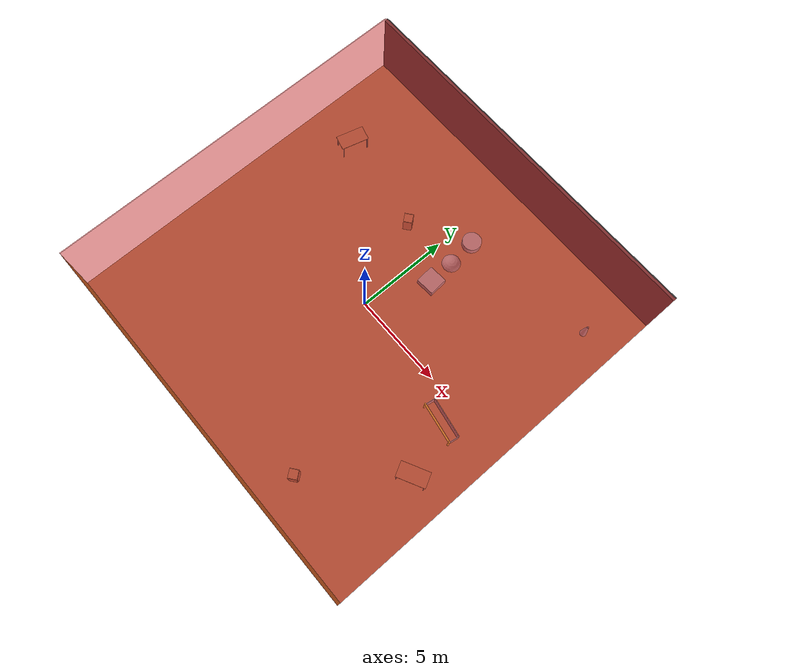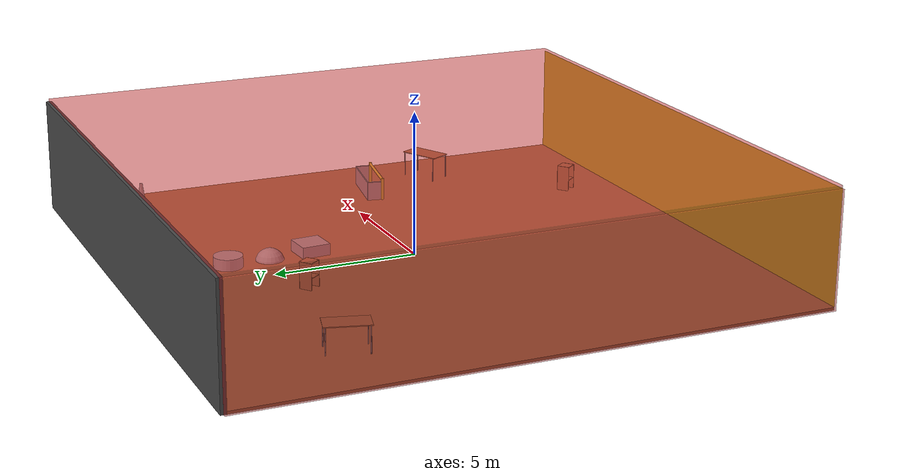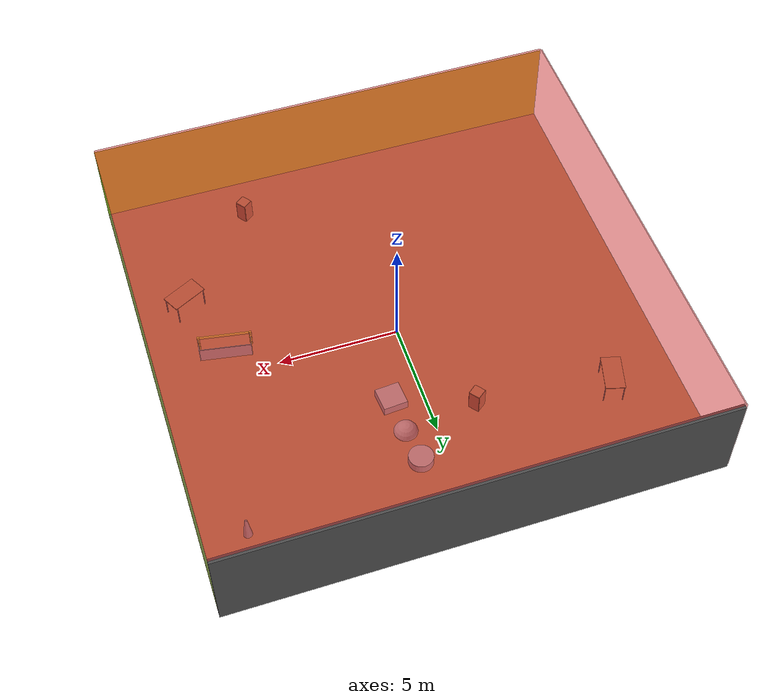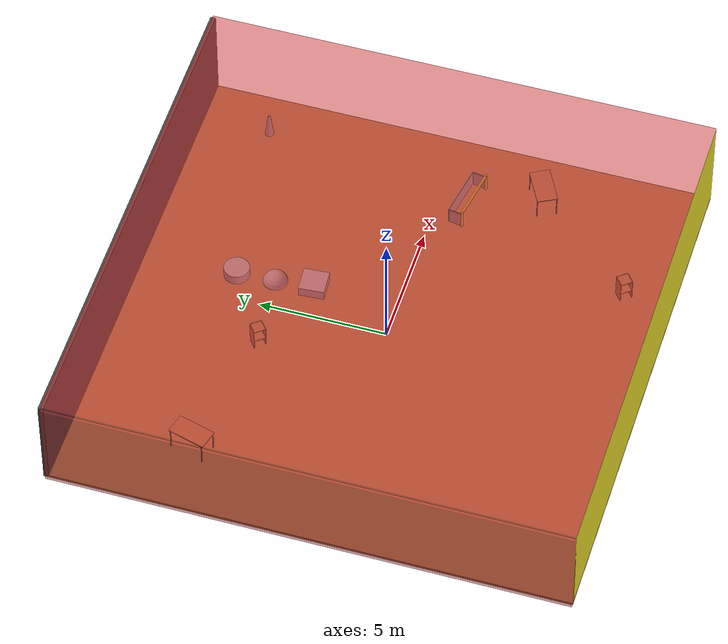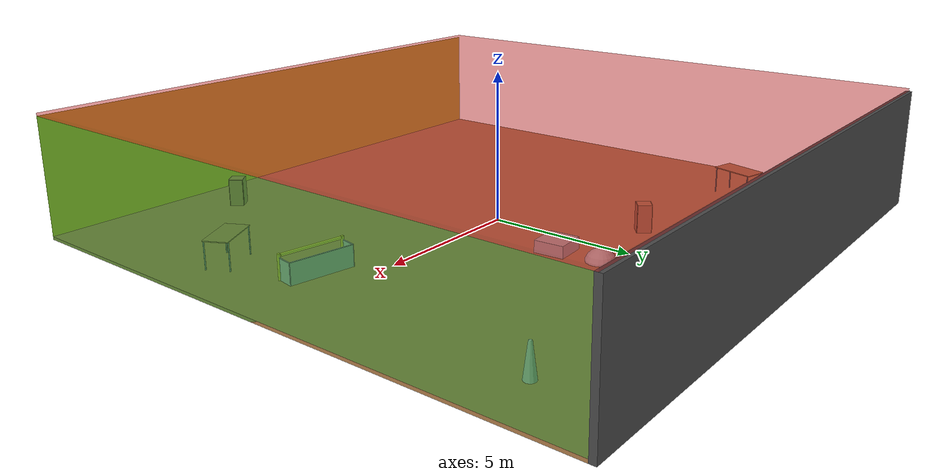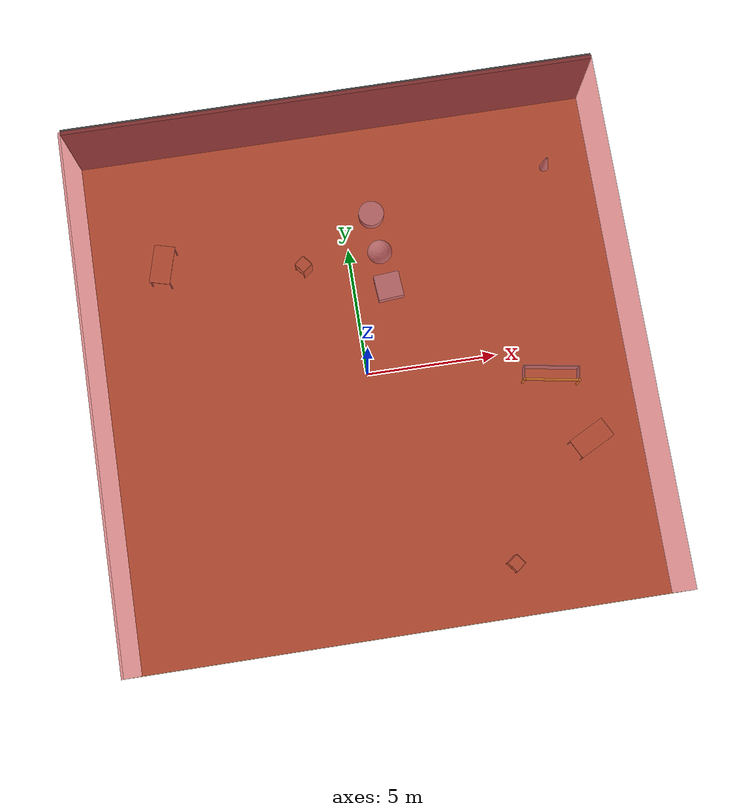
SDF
<sdf version="1.4">
 <world name="default">
  <physics type="ode">
   <max_step_size>0.001</max_step_size>
   <real_time_factor>1</real_time_factor>
   <real_time_update_rate>1000</real_time_update_rate>
   <gravity>0 0 -9.8</gravity>
  </physics>
  <scene><ambient>0.4 0.4 0.4 1</ambient><background>0.7 0.7 0.7 1</background><shadows>1</shadows></scene>
  <model name="Surrounding">
   <static>1</static>
   <link name="Ceiling">
    <collision name="Ceiling_Collision"><geometry><box><size>20 20 0.1</size></box></geometry></collision>
    <visual name="Ceiling_Visual">
     <geometry><box><size>20 20 0.1</size></box></geometry>
     <material>
      <script><uri>file://media/materials/scripts/gazebo.material</uri><name>Gazebo/RedTransparent</name></script>
     </material>
    </visual>
    <pose>0 0 4.05 0 0 0</pose>
   </link>
   <link name="Wall_South">
    <collision name="Wall_South_Collision">
     <geometry><box><size>20 0 4</size></box></geometry>
     <pose>0 0 2 0 -0 0</pose>
    </collision>
    <visual name="Wall_South_Visual">
     <pose>0 0 2 0 -0 0</pose>
     <geometry><box><size>20 0 4</size></box></geometry>
     <material>
      <script><uri>file://media/materials/scripts/gazebo.material</uri><name>Gazebo/Yellow</name></script>
     </material>
    </visual>
    <velocity_decay><linear>0</linear><angular>0</angular></velocity_decay>
    <pose>0 -10 0 0 -0 0</pose>
   </link>
   <link name="Wall_East">
    <collision name="Wall_21_Collision">
     <geometry><box><size>20 0 4</size></box></geometry>
     <pose>0 0 2 0 -0 0</pose>
    </collision>
    <visual name="Wall_21_Visual">
     <pose>0 0 2 0 -0 0</pose>
     <geometry><box><size>20 0 4</size></box></geometry>
     <material>
      <script><uri>file://media/materials/scripts/gazebo.material</uri><name>Gazebo/GreenTransparent</name></script>
     </material>
    </visual>
    <velocity_decay><linear>0</linear><angular>0</angular></velocity_decay>
    <pose>10 0 0 0 -0 1.5708</pose>
   </link>
   <link name="Wall_North">
    <collision name="Wall_22_Collision">
     <geometry><box><size>20 0.2 4</size></box></geometry>
     <pose>0 0 2 0 -0 0</pose>
    </collision>
    <visual name="Wall_22_Visual">
     <pose>0 0 2 0 -0 0</pose>
     <geometry><box><size>20 0.2 4</size></box></geometry>
     <material>
      <script><uri>file://media/materials/scripts/gazebo.material</uri><name>Gazebo/DarkGrey</name></script>
     </material>
    </visual>
    <velocity_decay><linear>0</linear><angular>0</angular></velocity_decay>
    <pose>0 10 0 0 -0 0</pose>
   </link>
   <link name="Wall_West">
    <collision name="Wall_23_Collision">
     <geometry><box><size>20 0.2 4</size></box></geometry>
     <pose>0 0 2 0 -0 0</pose>
    </collision>
    <visual name="Wall_23_Visual">
     <pose>0 0 2 0 -0 0</pose>
     <geometry><box><size>20 0.2 4</size></box></geometry>
     <material>
      <script><uri>file://media/materials/scripts/gazebo.material</uri><name>Gazebo/RedTransparent</name></script>
     </material>
    </visual>
    <velocity_decay><linear>0</linear><angular>0</angular></velocity_decay>
    <pose>-10 0 0 0 0 -1.5708</pose>
   </link>
   <link name="Ground_link">
    <collision name="collision">
     <pose>0 0 .05 0 -0 0</pose>
     <geometry><box><size>20 20 0.1</size></box></geometry>
    </collision>
    <visual name="visual">
     <pose>0 0 .05 0 -0 0</pose>
     <geometry><box><size>20 20 0.1</size></box></geometry>
     <material>
      <script><uri>file://media/materials/scripts/gazebo.material</uri><name>Gazebo/WoodPallet</name></script>
     </material>
    </visual>
   </link>
   <static>1</static>
  </model>
  <spherical_coordinates>
   <surface_model>EARTH_WGS84</surface_model>
   <latitude_deg>0</latitude_deg>
   <longitude_deg>0</longitude_deg>
   <elevation>0</elevation>
   <heading_deg>0</heading_deg>
  </spherical_coordinates>
  <light name="lightball_0" type="diffuse">
   <diffuse>0.8 0.8 0.8 1</diffuse>
   <specular>0.2 0.2 0.2 1</specular>
   <attenuation>
    <range>100</range>
    <constant>0.7</constant>
    <linear>0.01</linear>
    <quadratic>0.001</quadratic>
   </attenuation>
   <direction>-0.5 0.1 -0.9</direction>
   <pose>2.28150175194 9.55756311721 0.852149676697 0 0 0</pose>
  </light>
  <light name="lightball_1" type="diffuse">
   <diffuse>0.8 0.8 0.8 1</diffuse>
   <specular>0.2 0.2 0.2 1</specular>
   <attenuation>
    <range>100</range>
    <constant>0.7</constant>
    <linear>0.01</linear>
    <quadratic>0.001</quadratic>
   </attenuation>
   <direction>-0.5 0.1 -0.9</direction>
   <pose>-9.36313927701 -3.72787352846 1.84559962161 0 0 0</pose>
  </light>
  <light name="lightball_2" type="diffuse">
   <diffuse>0.8 0.8 0.8 1</diffuse>
   <specular>0.2 0.2 0.2 1</specular>
   <attenuation>
    <range>100</range>
    <constant>0.7</constant>
    <linear>0.01</linear>
    <quadratic>0.001</quadratic>
   </attenuation>
   <direction>-0.5 0.1 -0.9</direction>
   <pose>-1.57408428802 -4.52460093934 2.60811227034 0 0 0</pose>
  </light>
  <light name="lightball_3" type="diffuse">
   <diffuse>0.8 0.8 0.8 1</diffuse>
   <specular>0.2 0.2 0.2 1</specular>
   <attenuation>
    <range>100</range>
    <constant>0.7</constant>
    <linear>0.01</linear>
    <quadratic>0.001</quadratic>
   </attenuation>
   <direction>-0.5 0.1 -0.9</direction>
   <pose>1.44917313454 -5.76671902892 1.51798036136 0 0 0</pose>
  </light>
  <light name="lightball_4" type="diffuse">
   <diffuse>0.8 0.8 0.8 1</diffuse>
   <specular>0.2 0.2 0.2 1</specular>
   <attenuation>
    <range>100</range>
    <constant>0.7</constant>
    <linear>0.01</linear>
    <quadratic>0.001</quadratic>
   </attenuation>
   <direction>-0.5 0.1 -0.9</direction>
   <pose>-0.332113454841 -3.15452342833 3.85690776858 0 0 0</pose>
  </light>
  <light name="lightball_5" type="diffuse">
   <diffuse>0.8 0.8 0.8 1</diffuse>
   <specular>0.2 0.2 0.2 1</specular>
   <attenuation>
    <range>100</range>
    <constant>0.7</constant>
    <linear>0.01</linear>
    <quadratic>0.001</quadratic>
   </attenuation>
   <direction>-0.5 0.1 -0.9</direction>
   <pose>1.65646072784 7.57909258295 2.46154423493 0 0 0</pose>
  </light>
  <light name="lightball_6" type="diffuse">
   <diffuse>0.8 0.8 0.8 1</diffuse>
   <specular>0.2 0.2 0.2 1</specular>
   <attenuation>
    <range>100</range>
    <constant>0.7</constant>
    <linear>0.01</linear>
    <quadratic>0.001</quadratic>
   </attenuation>
   <direction>-0.5 0.1 -0.9</direction>
   <pose>8.94387374306 -8.33358588562 2.16610600418 0 0 0</pose>
  </light>
  <light name="lightball_7" type="diffuse">
   <diffuse>0.8 0.8 0.8 1</diffuse>
   <specular>0.2 0.2 0.2 1</specular>
   <attenuation>
    <range>100</range>
    <constant>0.7</constant>
    <linear>0.01</linear>
    <quadratic>0.001</quadratic>
   </attenuation>
   <direction>-0.5 0.1 -0.9</direction>
   <pose>-1.67292381909 -7.49818336301 2.24788176082 0 0 0</pose>
  </light>
  <light name="lightball_8" type="diffuse">
   <diffuse>0.8 0.8 0.8 1</diffuse>
   <specular>0.2 0.2 0.2 1</specular>
   <attenuation>
    <range>100</range>
    <constant>0.7</constant>
    <linear>0.01</linear>
    <quadratic>0.001</quadratic>
   </attenuation>
   <direction>-0.5 0.1 -0.9</direction>
   <pose>-1.84916606932 8.88618074293 2.20541606002 0 0 0</pose>
  </light>
  <light name="lightball_9" type="diffuse">
   <diffuse>0.8 0.8 0.8 1</diffuse>
   <specular>0.2 0.2 0.2 1</specular>
   <attenuation>
    <range>100</range>
    <constant>0.7</constant>
    <linear>0.01</linear>
    <quadratic>0.001</quadratic>
   </attenuation>
   <direction>-0.5 0.1 -0.9</direction>
   <pose>3.86137476231 -2.14122410192 2.16263820628 0 0 0</pose>
  </light>
  <light name="lightball_10" type="diffuse">
   <diffuse>0.8 0.8 0.8 1</diffuse>
   <specular>0.2 0.2 0.2 1</specular>
   <attenuation>
    <range>100</range>
    <constant>0.7</constant>
    <linear>0.01</linear>
    <quadratic>0.001</quadratic>
   </attenuation>
   <direction>-0.5 0.1 -0.9</direction>
   <pose>5.95138345464 -6.23587597009 1.81053814198 0 0 0</pose>
  </light>
  <light name="lightball_11" type="diffuse">
   <diffuse>0.8 0.8 0.8 1</diffuse>
   <specular>0.2 0.2 0.2 1</specular>
   <attenuation>
    <range>100</range>
    <constant>0.7</constant>
    <linear>0.01</linear>
    <quadratic>0.001</quadratic>
   </attenuation>
   <direction>-0.5 0.1 -0.9</direction>
   <pose>-5.91357078902 -6.15614754808 2.35012370611 0 0 0</pose>
  </light>
  <light name="lightball_12" type="diffuse">
   <diffuse>0.8 0.8 0.8 1</diffuse>
   <specular>0.2 0.2 0.2 1</specular>
   <attenuation>
    <range>100</range>
    <constant>0.7</constant>
    <linear>0.01</linear>
    <quadratic>0.001</quadratic>
   </attenuation>
   <direction>-0.5 0.1 -0.9</direction>
   <pose>-7.33075683093 8.14899356221 1.26936965968 0 0 0</pose>
  </light>
  <light name="lightball_13" type="diffuse">
   <diffuse>0.8 0.8 0.8 1</diffuse>
   <specular>0.2 0.2 0.2 1</specular>
   <attenuation>
    <range>100</range>
    <constant>0.7</constant>
    <linear>0.01</linear>
    <quadratic>0.001</quadratic>
   </attenuation>
   <direction>-0.5 0.1 -0.9</direction>
   <pose>3.90539649714 5.26581760964 3.17951528977 0 0 0</pose>
  </light>
  <include><uri>model://table</uri><pose>-7.21957101493 5.28766471248 0 0 0 1.30465419456</pose></include>
  <include><uri>model://cabinet</uri><pose>-1.82688016753 4.46412002157 0 0 0 0.663580295298</pose></include>
  <include>
   <uri>model://textured_shapes</uri>
   <pose>1.21083050985 4.75876724826 0 0 0 0.076113117696</pose>
  </include>
  <include><uri>model://cabinet</uri><pose>4.33999742015 -8.05244349641 0 0 0 0.664320369541</pose></include>
  <include><uri>model://table</uri><pose>7.9401277842 -3.88111991502 0 0 0 0.479265849856</pose></include>
  <include>
   <uri>model://robocup_3Dsim_goal</uri>
   <pose>6.88252958531 -1.42561456787 0 0 0 1.39975229301</pose>
  </include>
  <include>
   <uri>model://construction_cone</uri>
   <pose>8.20358701937 7.22367531131 0 0 0 0.586087809705</pose>
  </include>
 </world>
</sdf>

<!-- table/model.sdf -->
<sdf version="1.5">
  <model name="table">
    <static>true</static>
    <link name="link">
      <collision name="surface">
        <pose>0 0 1.0 0 0 0</pose>
        <geometry>
          <box>
            <size>1.5 0.8 0.03</size>
          </box>
        </geometry>
        <surface>
          <friction>
            <ode>
              <mu>0.6</mu>
              <mu2>0.6</mu2>
            </ode>
          </friction>
        </surface>
      </collision>
      <visual name="visual1">
        <pose>0 0 1.0 0 0 0</pose>
        <geometry>
          <box>
            <size>1.5 0.8 0.03</size>
          </box>
        </geometry>
        <material>
          <script>
            <uri>model://media/materials/scripts/gazebo.material</uri>
            <name>Gazebo/Wood</name>
          </script>
        </material>
      </visual>
      <collision name="front_left_leg">
        <pose>0.68 0.38 0.5 0 0 0</pose>
        <geometry>
          <cylinder>
            <radius>0.02</radius>
            <length>1.0</length>
          </cylinder>
        </geometry>
      </collision>
      <visual name="front_left_leg">
        <pose>0.68 0.38 0.5 0 0 0</pose>
        <geometry>
          <cylinder>
            <radius>0.02</radius>
            <length>1.0</length>
          </cylinder>
        </geometry>
        <material>
          <script>
            <uri>model://media/materials/scripts/gazebo.material</uri>
            <name>Gazebo/Grey</name>
          </script>
        </material>
      </visual>
      <collision name="front_right_leg">
        <pose>0.68 -0.38 0.5 0 0 0</pose>
        <geometry>
          <cylinder>
            <radius>0.02</radius>
            <length>1.0</length>
          </cylinder>
        </geometry>
      </collision>
      <visual name="front_right_leg">
        <pose>0.68 -0.38 0.5 0 0 0</pose>
        <geometry>
          <cylinder>
            <radius>0.02</radius>
            <length>1.0</length>
          </cylinder>
        </geometry>
        <material>
          <script>
            <uri>model://media/materials/scripts/gazebo.material</uri>
            <name>Gazebo/Grey</name>
          </script>
        </material>
      </visual>
      <collision name="back_right_leg">
        <pose>-0.68 -0.38 0.5 0 0 0</pose>
        <geometry>
          <cylinder>
            <radius>0.02</radius>
            <length>1.0</length>
          </cylinder>
        </geometry>
      </collision>
      <visual name="back_right_leg">
        <pose>-0.68 -0.38 0.5 0 0 0</pose>
        <geometry>
          <cylinder>
            <radius>0.02</radius>
            <length>1.0</length>
          </cylinder>
        </geometry>
        <material>
          <script>
            <uri>model://media/materials/scripts/gazebo.material</uri>
            <name>Gazebo/Grey</name>
          </script>
        </material>
      </visual>
      <collision name="back_left_leg">
        <pose>-0.68 0.38 0.5 0 0 0</pose>
        <geometry>
          <cylinder>
            <radius>0.02</radius>
            <length>1.0</length>
          </cylinder>
        </geometry>
      </collision>
      <visual name="back_left_leg">
        <pose>-0.68 0.38 0.5 0 0 0</pose>
        <geometry>
          <cylinder>
            <radius>0.02</radius>
            <length>1.0</length>
          </cylinder>
        </geometry>
        <material>
          <script>
            <uri>model://media/materials/scripts/gazebo.material</uri>
            <name>Gazebo/Grey</name>
          </script>
        </material>
      </visual>
    </link>
  </model>
</sdf>

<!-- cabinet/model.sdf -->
<sdf version="1.5">
  <model name="cabinet">
    <static>true</static>
    <link name="cabinet_bottom_plate">
      <inertial>
        <pose>0 0 -1 0 0 0</pose>
        <inertia>
          <ixx>2.050000</ixx>
          <ixy>0</ixy>
          <ixz>0</ixz>
          <iyy>2.050000</iyy>
          <iyz>0</iyz>
          <izz>2.050000</izz>
        </inertia>
        <mass>25.000000</mass>
      </inertial>
      <collision name="cabinet_bottom_plate_geom">
        <pose>0 0 0.010000 0 0 0</pose>
        <geometry>
          <box>
            <size>0.450000 0.450000 0.020000</size>
          </box>
        </geometry>
      </collision>
      <visual name="cabinet_bottom_plate_geom_visual">
        <pose>0 0 0.010000 0 0 0</pose>
        <geometry>
          <box>
            <size>0.450000 0.450000 0.020000</size>
          </box>
        </geometry>
        <material>
          <script>
            <uri>model://media/materials/scripts/gazebo.material</uri>
            <name>Gazebo/Wood</name>
          </script>
        </material>
      </visual>
      <collision name="cabinet_bottom_plate_geom_cabinet_back_plate">
        <pose>0.235000 0 0.510000 0 0 0</pose>
        <geometry>
          <box>
            <size>0.020000 0.450000 1.020000</size>
          </box>
        </geometry>
      </collision>
      <visual name="cabinet_bottom_plate_geom_cabinet_back_plate_visual">
        <pose>0.235000 0 0.510000 0 0 0</pose>
        <geometry>
          <box>
            <size>0.020000 0.450000 1.020000</size>
          </box>
        </geometry>
        <material>
          <script>
            <uri>model://media/materials/scripts/gazebo.material</uri>
            <name>Gazebo/Wood</name>
          </script>
        </material>
      </visual>
      <collision name="cabinet_bottom_plate_geom_cabinet_left_plate">
        <pose>0 0.235000 0.510000 0 0 0</pose>
        <geometry>
          <box>
            <size>0.450000 0.020000 1.020000</size>
          </box>
        </geometry>
      </collision>
      <visual name="cabinet_bottom_plate_geom_cabinet_left_plate_visual">
        <pose>0 0.235000 0.510000 0 0 0</pose>
        <geometry>
          <box>
            <size>0.450000 0.020000 1.020000</size>
          </box>
        </geometry>
        <material>
          <script>
            <uri>model://media/materials/scripts/gazebo.material</uri>
            <name>Gazebo/Wood</name>
          </script>
        </material>
      </visual>
      <collision name="cabinet_bottom_plate_geom_cabinet_middle_plate">
        <pose>0 0 0.510000 0 0 0</pose>
        <geometry>
          <box>
            <size>0.450000 0.450000 0.020000</size>
          </box>
        </geometry>
      </collision>
      <visual name="cabinet_bottom_plate_geom_cabinet_middle_plate_visual">
        <pose>0 0 0.510000 0 0 0</pose>
        <geometry>
          <box>
            <size>0.450000 0.450000 0.020000</size>
          </box>
        </geometry>
        <material>
          <script>
            <uri>model://media/materials/scripts/gazebo.material</uri>
            <name>Gazebo/Wood</name>
          </script>
        </material>
      </visual>
      <collision name="cabinet_bottom_plate_geom_cabinet_right_plate">
        <pose>0 -0.235000 0.510000 0 0 0</pose>
        <geometry>
          <box>
            <size>0.450000 0.020000 1.020000</size>
          </box>
        </geometry>
      </collision>
      <visual name="cabinet_bottom_plate_geom_cabinet_right_plate_visual">
        <pose>0 -0.235000 0.510000 0 0 0</pose>
        <geometry>
          <box>
            <size>0.450000 0.020000 1.020000</size>
          </box>
        </geometry>
        <material>
          <script>
            <uri>model://media/materials/scripts/gazebo.material</uri>
            <name>Gazebo/Wood</name>
          </script>
        </material>
      </visual>
      <collision name="cabinet_bottom_plate_geom_cabinet_top_plate">
        <pose>0 0 1.010000 0 0 0</pose>
        <geometry>
          <box>
            <size>0.450000 0.450000 0.020000</size>
          </box>
        </geometry>
      </collision>
      <visual name="cabinet_bottom_plate_geom_cabinet_top_plate_visual">
        <pose>0 0 1.010000 0 0 0</pose>
        <geometry>
          <box>
            <size>0.450000 0.450000 0.020000</size>
          </box>
        </geometry>
        <material>
          <script>
            <uri>model://media/materials/scripts/gazebo.material</uri>
            <name>Gazebo/Wood</name>
          </script>
        </material>
      </visual>
    </link>
  </model>
</sdf>

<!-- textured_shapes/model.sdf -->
<sdf version="1.6">
  <model name="textured_shapes">
    <pose>0 0 0.5 0 0 0</pose>
    <link name="box">
      <pose>0 -1.5 0 0 0 0</pose>
      <collision name="collision">
        <geometry>
          <box>
            <size>1 1 1</size>
          </box>
        </geometry>
      </collision>
      <visual name="visual">
        <geometry>
          <box>
            <size>1 1 1</size>
          </box>
        </geometry>
        <material>
          <script>
            <uri>model://../model_source/models/textured_shapes/materials/scripts</uri>
            <uri>model://../model_source/models/textured_shapes/materials/textures</uri>
            <name>TexturedShape/Squares</name>
          </script>
        </material>
      </visual>
    </link>
    <link name="sphere">
      <collision name="collision">
        <geometry>
          <sphere>
            <radius>0.5</radius>
          </sphere>
        </geometry>
      </collision>
      <visual name="visual">
        <geometry>
          <sphere>
            <radius>0.5</radius>
          </sphere>
        </geometry>
        <material>
          <script>
            <uri>model://../model_source/models/textured_shapes/materials/scripts</uri>
            <uri>model://../model_source/models/textured_shapes/materials/textures</uri>
            <name>TexturedShape/Squares</name>
          </script>
        </material>
      </visual>
    </link>
    <link name="cylinder">
      <pose>0 1.5 0 0 0 0</pose>
      <collision name="collision">
        <geometry>
          <cylinder>
            <radius>0.5</radius>
            <length>1</length>
          </cylinder>
        </geometry>
      </collision>
      <visual name="visual">
        <geometry>
          <cylinder>
            <radius>0.5</radius>
            <length>1</length>
          </cylinder>
        </geometry>
        <material>
          <script>
            <uri>model://../model_source/models/textured_shapes/materials/scripts</uri>
            <uri>model://../model_source/models/textured_shapes/materials/textures</uri>
            <name>TexturedShape/Squares</name>
          </script>
        </material>
      </visual>
    </link>
  </model>
</sdf>

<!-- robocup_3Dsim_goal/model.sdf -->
<sdf version="1.5">
  <model name="robocup_3d_goal">
    <static>true</static>
    <link name="left_post">
      <pose>0 1.05 0.45 0 0 0</pose>
      <collision name="collision">
        <geometry>
          <cylinder>
            <radius>0.05</radius>
            <length>0.9</length>
          </cylinder>
        </geometry>
      </collision>
      <visual name="visual">
        <geometry>
          <cylinder>
            <radius>0.05</radius>
            <length>0.9</length>
          </cylinder>
        </geometry>
        <material>
          <script>
            <uri>file://media/materials/scripts/gazebo.material</uri>
            <name>Gazebo/ZincYellow</name>
          </script>
        </material>
      </visual>
    </link>
    <link name="left_support_horiz_lower">
      <pose>0.30 1.05 0.01 0 0 0</pose>
      <collision name="collision">
        <geometry>
          <box>
            <size>0.50 0.02 0.02</size>
          </box>
        </geometry>
      </collision>
      <visual name="visual">
        <geometry>
          <box>
            <size>0.50 0.02 0.02</size>
          </box>
        </geometry>
        <material>
          <script>
            <uri>file://media/materials/scripts/gazebo.material</uri>
            <name>Gazebo/White</name>
          </script>
        </material>
      </visual>
    </link>
    <link name="left_support_horiz_upper">
      <pose>0.30 1.05 0.79 0 0 0</pose>
      <collision name="collision">
        <geometry>
          <box>
            <size>0.50 0.02 0.02</size>
          </box>
        </geometry>
      </collision>
      <visual name="visual">
        <geometry>
          <box>
            <size>0.50 0.02 0.02</size>
          </box>
        </geometry>
        <material>
          <script>
            <uri>file://media/materials/scripts/gazebo.material</uri>
            <name>Gazebo/White</name>
          </script>
        </material>
      </visual>
    </link>
    <link name="left_support_vertical">
      <pose>0.56 1.05 0.4 0 1.5708 0</pose>
      <collision name="collision">
        <geometry>
          <box>
            <size>0.80 0.02 0.02</size>
          </box>
        </geometry>
      </collision>
      <visual name="visual">
        <geometry>
          <box>
            <size>0.80 0.02 0.02</size>
          </box>
        </geometry>
        <material>
          <script>
            <uri>file://media/materials/scripts/gazebo.material</uri>
            <name>Gazebo/White</name>
          </script>
        </material>
      </visual>
    </link>
    <link name="right_support_horiz_lower">
      <pose>0.30 -1.05 0.01 0 0 0</pose>
      <collision name="collision">
        <geometry>
          <box>
            <size>0.50 0.02 0.02</size>
          </box>
        </geometry>
      </collision>
      <visual name="visual">
        <geometry>
          <box>
            <size>0.50 0.02 0.02</size>
          </box>
        </geometry>
        <material>
          <script>
            <uri>file://media/materials/scripts/gazebo.material</uri>
            <name>Gazebo/White</name>
          </script>
        </material>
      </visual>
    </link>
    <link name="right_support_horiz_upper">
      <pose>0.30 -1.05 0.79 0 0 0</pose>
      <collision name="collision">
        <geometry>
          <box>
            <size>0.50 0.02 0.02</size>
          </box>
        </geometry>
      </collision>
      <visual name="visual">
        <geometry>
          <box>
            <size>0.50 0.02 0.02</size>
          </box>
        </geometry>
        <material>
          <script>
            <uri>file://media/materials/scripts/gazebo.material</uri>
            <name>Gazebo/White</name>
          </script>
        </material>
      </visual>
    </link>
    <link name="right_support_vertical">
      <pose>0.56 -1.05 0.4 0 1.5708 0</pose>
      <collision name="collision">
        <geometry>
          <box>
            <size>0.80 0.02 0.02</size>
          </box>
        </geometry>
      </collision>
      <visual name="visual">
        <geometry>
          <box>
            <size>0.80 0.02 0.02</size>
          </box>
        </geometry>
        <material>
          <script>
            <uri>file://media/materials/scripts/gazebo.material</uri>
            <name>Gazebo/White</name>
          </script>
        </material>
      </visual>
    </link>
    <link name="center_support_horiz_lower">
      <pose>0.56 0 0.01 0 1.5708 0</pose>
      <collision name="collision">
        <geometry>
          <box>
            <size>0.02 2.08 0.02</size>
          </box>
        </geometry>
      </collision>
      <visual name="visual">
        <geometry>
          <box>
            <size>0.02 2.08 0.02</size>
          </box>
        </geometry>
        <material>
          <script>
            <uri>file://media/materials/scripts/gazebo.material</uri>
            <name>Gazebo/White</name>
          </script>
        </material>
      </visual>
    </link>
    <link name="center_support_horiz_upper">
      <pose>0.56 0 0.79 0 1.5708 0</pose>
      <collision name="collision">
        <geometry>
          <box>
            <size>0.02 2.08 0.02</size>
          </box>
        </geometry>
      </collision>
      <visual name="visual">
        <geometry>
          <box>
            <size>0.02 2.08 0.02</size>
          </box>
        </geometry>
        <material>
          <script>
            <uri>file://media/materials/scripts/gazebo.material</uri>
            <name>Gazebo/White</name>
          </script>
        </material>
      </visual>
    </link>
    <link name="right_post">
      <pose>0 -1.05 0.45 0 0 0</pose>
      <collision name="collision">
        <geometry>
          <cylinder>
            <radius>0.05</radius>
            <length>0.9</length>
          </cylinder>
        </geometry>
      </collision>
      <visual name="visual">
        <geometry>
          <cylinder>
            <radius>0.05</radius>
            <length>0.9</length>
          </cylinder>
        </geometry>
        <material>
          <script>
            <uri>file://media/materials/scripts/gazebo.material</uri>
            <name>Gazebo/ZincYellow</name>
          </script>
        </material>
      </visual>
    </link>
    <link name="crossbar">
      <pose>0 0 0.85 1.57 1.57 0</pose>
      <collision name="collision">
        <geometry>
          <cylinder>
            <radius>0.05</radius>
            <length>2.0</length>
          </cylinder>
        </geometry>
      </collision>
      <visual name="visual">
        <geometry>
          <cylinder>
            <radius>0.05</radius>
            <length>2.0</length>
          </cylinder>
        </geometry>
        <material>
          <script>
            <uri>file://media/materials/scripts/gazebo.material</uri>
            <name>Gazebo/ZincYellow</name>
          </script>
        </material>
      </visual>
    </link>
    <link name="center_net">
      <pose>0.56 0 0.40 0 0 0</pose>
      <collision name="collision">
        <geometry>
          <box>
            <size>0.01 2.1 0.80</size>
          </box>
        </geometry>
      </collision>
      <visual name="visual">
        <geometry>
          <box>
            <size>0.01 2.1 0.80</size>
          </box>
        </geometry>
        <material>
          <script>
            <uri>model://../model_source/models/robocup09_spl_field/materials/scripts/</uri>
            <uri>model://../model_source/models/robocup09_spl_field/materials/textures/</uri>
            <name>RoboCup/Net</name>
          </script>
        </material>
      </visual>
    </link>
    <link name="left_net">
      <pose>0.30 1.05 0.40 0 0 0</pose>
      <collision name="collision">
        <geometry>
          <box>
            <size>0.50 0.01 0.76</size>
          </box>
        </geometry>
      </collision>
      <visual name="visual">
        <geometry>
          <box>
            <size>0.50 0.01 0.76</size>
          </box>
        </geometry>
        <material>
          <script>
            <uri>model://../model_source/models/robocup09_spl_field/materials/scripts/</uri>
            <uri>model://../model_source/models/robocup09_spl_field/materials/textures/</uri>
            <name>RoboCup/Net</name>
          </script>
        </material>
      </visual>
    </link>
    <link name="right_net">
      <pose>0.30 -1.05 0.40 0 0 0</pose>
      <collision name="collision">
        <geometry>
          <box>
            <size>0.50 0.01 0.76</size>
          </box>
        </geometry>
      </collision>
      <visual name="visual">
        <geometry>
          <box>
            <size>0.50 0.01 0.76</size>
          </box>
        </geometry>
        <material>
          <script>
            <uri>model://../model_source/models/robocup09_spl_field/materials/scripts/</uri>
            <uri>model://../model_source/models/robocup09_spl_field/materials/textures/</uri>
            <name>RoboCup/Net</name>
          </script>
        </material>
      </visual>
    </link>
  </model>
</sdf>

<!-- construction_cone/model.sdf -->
<sdf version="1.5">
  <model name="Construction Cone">
    <link name="link">
      <collision name="collision">
        <geometry>
          <mesh>
            <scale>10 10 10</scale>
            <uri>file://isr-testbed/construction_cone/meshes/construction_cone.dae</uri>
          </mesh>
        </geometry>
      </collision>
      <visual name="visual">
        <geometry>
          <mesh>
            <scale>10 10 10</scale>
            <uri>file://isr-testbed/construction_cone/meshes/construction_cone.dae</uri>
          </mesh>
        </geometry>
      </visual>
    </link>
  </model>
</sdf>
